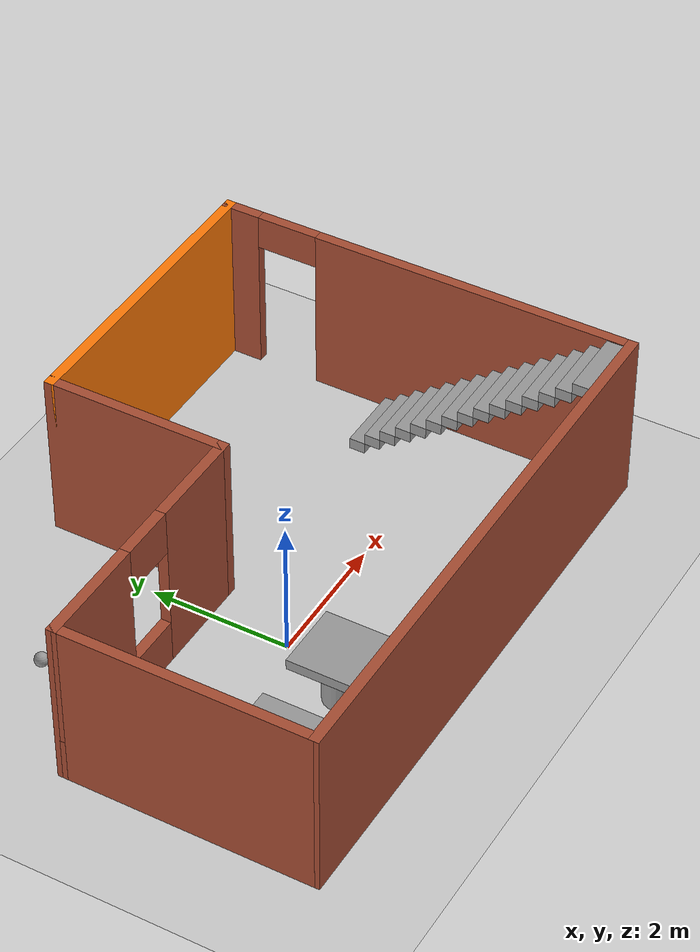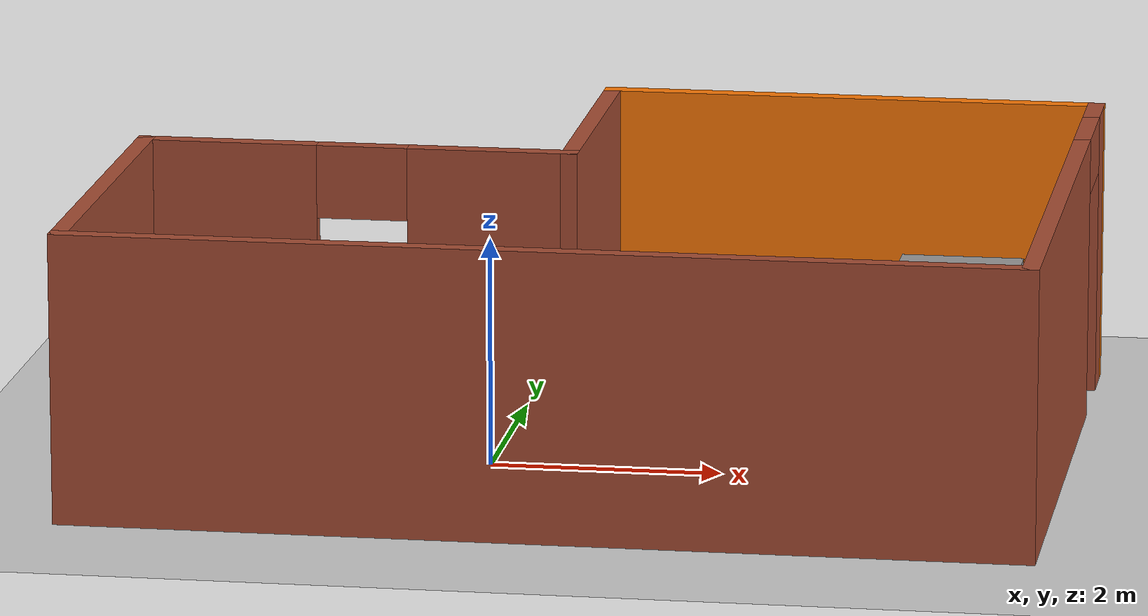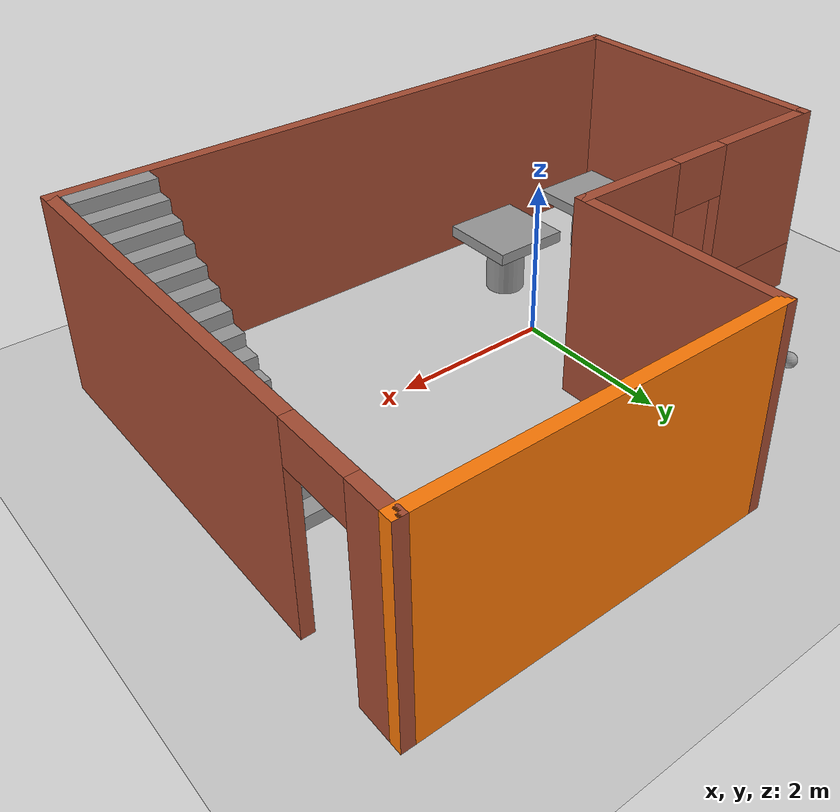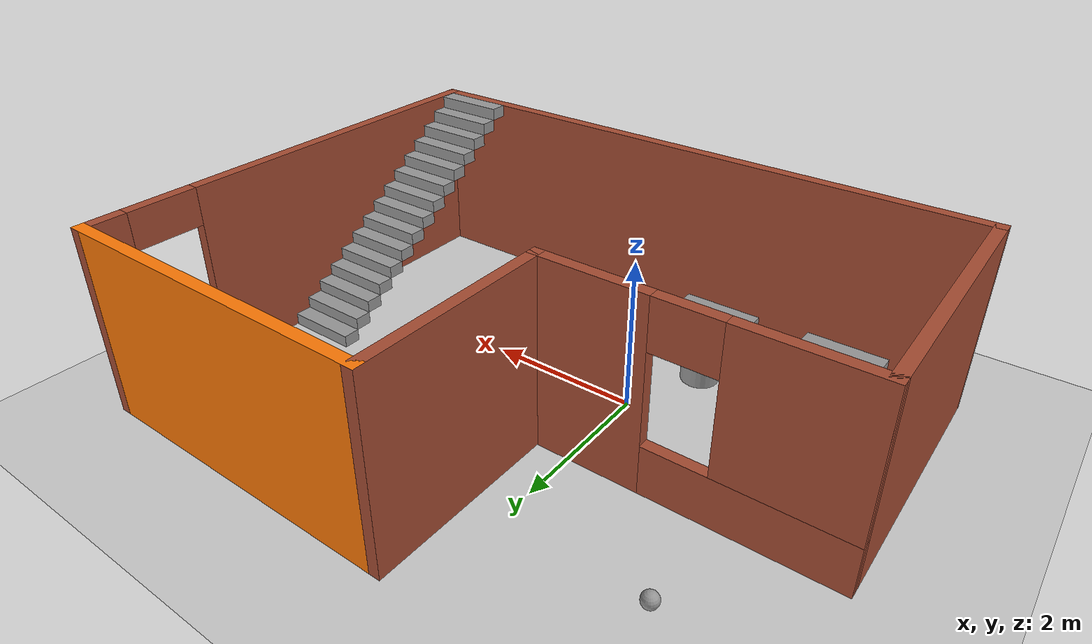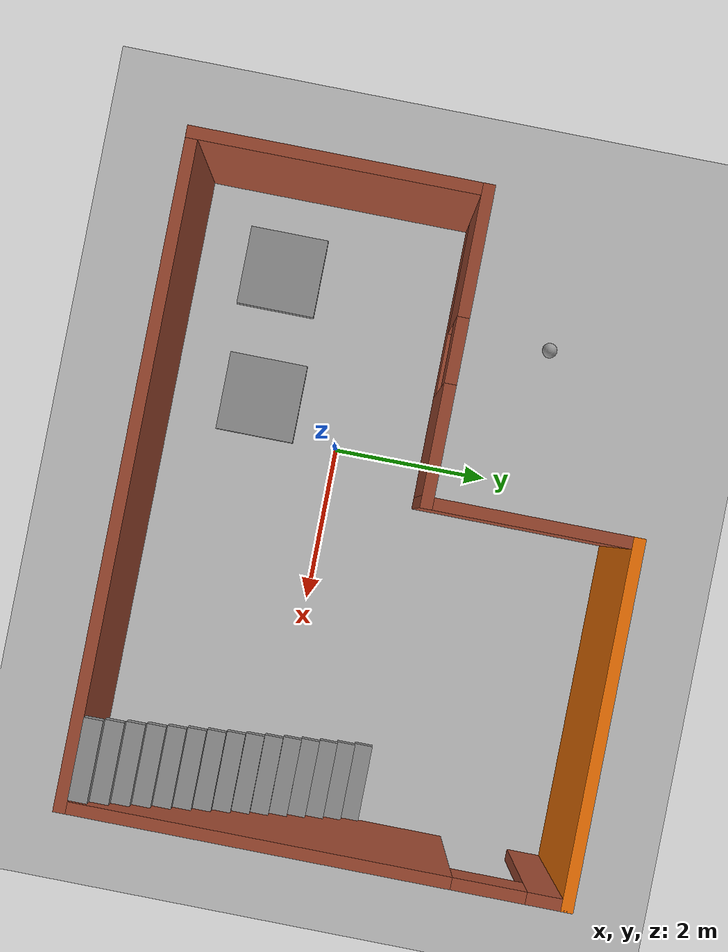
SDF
<sdf version="1.6">
 <world name="default">
  <plugin name="hello" filename="libhello.so"/>
  <light name="sun" type="directional">
   <pose>0 0 10 0 -0 0</pose>
   <diffuse>0.8 0.8 0.8 1</diffuse>
   <specular>0.2 0.2 0.2 1</specular>
   <attenuation>
    <range>1000</range>
    <constant>0.9</constant>
    <linear>0.01</linear>
    <quadratic>0.001</quadratic>
   </attenuation>
   <direction>-0.5 0.1 -0.9</direction>
  </light>
  <model name="ground_plane">
   <static>1</static>
   <link name="link">
    <collision name="collision">
     <geometry><plane><normal>0 0 1</normal><size>100 100</size></plane></geometry>
     <surface><friction><ode><mu>100</mu><mu2>50</mu2></ode></friction></surface>
    </collision>
    <visual name="visual">
     <cast_shadows>0</cast_shadows>
     <geometry><plane><normal>0 0 1</normal><size>100 100</size></plane></geometry>
     <material>
      <script><uri>file://media/materials/scripts/gazebo.material</uri><name>Gazebo/Grey</name></script>
     </material>
    </visual>
   </link>
  </model>
  <gravity>0 0 -9.8</gravity>
  <magnetic_field>6e-06 2.3e-05 -4.2e-05</magnetic_field>
  <atmosphere type="adiabatic"/>
  <physics name="default_physics" default="0" type="ode">
   <max_step_size>0.001</max_step_size>
   <real_time_factor>1</real_time_factor>
   <real_time_update_rate>1000</real_time_update_rate>
  </physics>
  <scene><ambient>0.4 0.4 0.4 1</ambient><background>0.7 0.7 0.7 1</background><shadows>1</shadows></scene>
  <spherical_coordinates>
   <surface_model>EARTH_WGS84</surface_model>
   <latitude_deg>0</latitude_deg>
   <longitude_deg>0</longitude_deg>
   <elevation>0</elevation>
   <heading_deg>0</heading_deg>
  </spherical_coordinates>
  <model name="office">
   <pose>0.801744 0.711257 0 0 -0 0</pose>
   <link name="Stairs_0">
    <visual name="Stairs_0_Visual_0">
     <pose>3.46197 0.405401 0.083333 0 -0 0</pose>
     <geometry><box><size>1 0.233333 0.166667</size></box></geometry>
     <material>
      <script><uri>file://media/materials/scripts/gazebo.material</uri><name>Gazebo/Grey</name></script>
      <ambient>1 1 1 1</ambient>
     </material>
     <meta><layer>0</layer></meta>
    </visual>
    <collision name="Stairs_0_Collision_0">
     <geometry><box><size>1 0.233333 0.166667</size></box></geometry>
     <pose>3.46197 0.405401 0.083333 0 -0 0</pose>
    </collision>
    <visual name="Stairs_0_Visual_1">
     <pose>3.46197 0.172068 0.25 0 -0 0</pose>
     <geometry><box><size>1 0.233333 0.166667</size></box></geometry>
     <material>
      <script><uri>file://media/materials/scripts/gazebo.material</uri><name>Gazebo/Grey</name></script>
      <ambient>1 1 1 1</ambient>
     </material>
     <meta><layer>0</layer></meta>
    </visual>
    <collision name="Stairs_0_Collision_1">
     <geometry><box><size>1 0.233333 0.166667</size></box></geometry>
     <pose>3.46197 0.172068 0.25 0 -0 0</pose>
    </collision>
    <visual name="Stairs_0_Visual_2">
     <pose>3.46197 -0.061265 0.416667 0 -0 0</pose>
     <geometry><box><size>1 0.233333 0.166667</size></box></geometry>
     <material>
      <script><uri>file://media/materials/scripts/gazebo.material</uri><name>Gazebo/Grey</name></script>
      <ambient>1 1 1 1</ambient>
     </material>
     <meta><layer>0</layer></meta>
    </visual>
    <collision name="Stairs_0_Collision_2">
     <geometry><box><size>1 0.233333 0.166667</size></box></geometry>
     <pose>3.46197 -0.061265 0.416667 0 -0 0</pose>
    </collision>
    <visual name="Stairs_0_Visual_3">
     <pose>3.46197 -0.294599 0.583333 0 -0 0</pose>
     <geometry><box><size>1 0.233333 0.166667</size></box></geometry>
     <material>
      <script><uri>file://media/materials/scripts/gazebo.material</uri><name>Gazebo/Grey</name></script>
      <ambient>1 1 1 1</ambient>
     </material>
     <meta><layer>0</layer></meta>
    </visual>
    <collision name="Stairs_0_Collision_3">
     <geometry><box><size>1 0.233333 0.166667</size></box></geometry>
     <pose>3.46197 -0.294599 0.583333 0 -0 0</pose>
    </collision>
    <visual name="Stairs_0_Visual_4">
     <pose>3.46197 -0.527932 0.75 0 -0 0</pose>
     <geometry><box><size>1 0.233333 0.166667</size></box></geometry>
     <material>
      <script><uri>file://media/materials/scripts/gazebo.material</uri><name>Gazebo/Grey</name></script>
      <ambient>1 1 1 1</ambient>
     </material>
     <meta><layer>0</layer></meta>
    </visual>
    <collision name="Stairs_0_Collision_4">
     <geometry><box><size>1 0.233333 0.166667</size></box></geometry>
     <pose>3.46197 -0.527932 0.75 0 -0 0</pose>
    </collision>
    <visual name="Stairs_0_Visual_5">
     <pose>3.46197 -0.761266 0.916667 0 -0 0</pose>
     <geometry><box><size>1 0.233333 0.166667</size></box></geometry>
     <material>
      <script><uri>file://media/materials/scripts/gazebo.material</uri><name>Gazebo/Grey</name></script>
      <ambient>1 1 1 1</ambient>
     </material>
     <meta><layer>0</layer></meta>
    </visual>
    <collision name="Stairs_0_Collision_5">
     <geometry><box><size>1 0.233333 0.166667</size></box></geometry>
     <pose>3.46197 -0.761266 0.916667 0 -0 0</pose>
    </collision>
    <visual name="Stairs_0_Visual_6">
     <pose>3.46197 -0.994599 1.08333 0 -0 0</pose>
     <geometry><box><size>1 0.233333 0.166667</size></box></geometry>
     <material>
      <script><uri>file://media/materials/scripts/gazebo.material</uri><name>Gazebo/Grey</name></script>
      <ambient>1 1 1 1</ambient>
     </material>
     <meta><layer>0</layer></meta>
    </visual>
    <collision name="Stairs_0_Collision_6">
     <geometry><box><size>1 0.233333 0.166667</size></box></geometry>
     <pose>3.46197 -0.994599 1.08333 0 -0 0</pose>
    </collision>
    <visual name="Stairs_0_Visual_7">
     <pose>3.46197 -1.22793 1.25 0 -0 0</pose>
     <geometry><box><size>1 0.233333 0.166667</size></box></geometry>
     <material>
      <script><uri>file://media/materials/scripts/gazebo.material</uri><name>Gazebo/Grey</name></script>
      <ambient>1 1 1 1</ambient>
     </material>
     <meta><layer>0</layer></meta>
    </visual>
    <collision name="Stairs_0_Collision_7">
     <geometry><box><size>1 0.233333 0.166667</size></box></geometry>
     <pose>3.46197 -1.22793 1.25 0 -0 0</pose>
    </collision>
    <visual name="Stairs_0_Visual_8">
     <pose>3.46197 -1.46127 1.41667 0 -0 0</pose>
     <geometry><box><size>1 0.233333 0.166667</size></box></geometry>
     <material>
      <script><uri>file://media/materials/scripts/gazebo.material</uri><name>Gazebo/Grey</name></script>
      <ambient>1 1 1 1</ambient>
     </material>
     <meta><layer>0</layer></meta>
    </visual>
    <collision name="Stairs_0_Collision_8">
     <geometry><box><size>1 0.233333 0.166667</size></box></geometry>
     <pose>3.46197 -1.46127 1.41667 0 -0 0</pose>
    </collision>
    <visual name="Stairs_0_Visual_9">
     <pose>3.46197 -1.6946 1.58333 0 -0 0</pose>
     <geometry><box><size>1 0.233333 0.166667</size></box></geometry>
     <material>
      <script><uri>file://media/materials/scripts/gazebo.material</uri><name>Gazebo/Grey</name></script>
      <ambient>1 1 1 1</ambient>
     </material>
     <meta><layer>0</layer></meta>
    </visual>
    <collision name="Stairs_0_Collision_9">
     <geometry><box><size>1 0.233333 0.166667</size></box></geometry>
     <pose>3.46197 -1.6946 1.58333 0 -0 0</pose>
    </collision>
    <visual name="Stairs_0_Visual_10">
     <pose>3.46197 -1.92793 1.75 0 -0 0</pose>
     <geometry><box><size>1 0.233333 0.166667</size></box></geometry>
     <material>
      <script><uri>file://media/materials/scripts/gazebo.material</uri><name>Gazebo/Grey</name></script>
      <ambient>1 1 1 1</ambient>
     </material>
     <meta><layer>0</layer></meta>
    </visual>
    <collision name="Stairs_0_Collision_10">
     <geometry><box><size>1 0.233333 0.166667</size></box></geometry>
     <pose>3.46197 -1.92793 1.75 0 -0 0</pose>
    </collision>
    <visual name="Stairs_0_Visual_11">
     <pose>3.46197 -2.16127 1.91667 0 -0 0</pose>
     <geometry><box><size>1 0.233333 0.166667</size></box></geometry>
     <material>
      <script><uri>file://media/materials/scripts/gazebo.material</uri><name>Gazebo/Grey</name></script>
      <ambient>1 1 1 1</ambient>
     </material>
     <meta><layer>0</layer></meta>
    </visual>
    <collision name="Stairs_0_Collision_11">
     <geometry><box><size>1 0.233333 0.166667</size></box></geometry>
     <pose>3.46197 -2.16127 1.91667 0 -0 0</pose>
    </collision>
    <visual name="Stairs_0_Visual_12">
     <pose>3.46197 -2.3946 2.08333 0 -0 0</pose>
     <geometry><box><size>1 0.233333 0.166667</size></box></geometry>
     <material>
      <script><uri>file://media/materials/scripts/gazebo.material</uri><name>Gazebo/Grey</name></script>
      <ambient>1 1 1 1</ambient>
     </material>
     <meta><layer>0</layer></meta>
    </visual>
    <collision name="Stairs_0_Collision_12">
     <geometry><box><size>1 0.233333 0.166667</size></box></geometry>
     <pose>3.46197 -2.3946 2.08333 0 -0 0</pose>
    </collision>
    <visual name="Stairs_0_Visual_13">
     <pose>3.46197 -2.62793 2.25 0 -0 0</pose>
     <geometry><box><size>1 0.233333 0.166667</size></box></geometry>
     <material>
      <script><uri>file://media/materials/scripts/gazebo.material</uri><name>Gazebo/Grey</name></script>
      <ambient>1 1 1 1</ambient>
     </material>
     <meta><layer>0</layer></meta>
    </visual>
    <collision name="Stairs_0_Collision_13">
     <geometry><box><size>1 0.233333 0.166667</size></box></geometry>
     <pose>3.46197 -2.62793 2.25 0 -0 0</pose>
    </collision>
    <visual name="Stairs_0_Visual_14">
     <pose>3.46197 -2.86126 2.41667 0 -0 0</pose>
     <geometry><box><size>1 0.233333 0.166667</size></box></geometry>
     <material>
      <script><uri>file://media/materials/scripts/gazebo.material</uri><name>Gazebo/Grey</name></script>
      <ambient>1 1 1 1</ambient>
     </material>
     <meta><layer>0</layer></meta>
    </visual>
    <collision name="Stairs_0_Collision_14">
     <geometry><box><size>1 0.233333 0.166667</size></box></geometry>
     <pose>3.46197 -2.86126 2.41667 0 -0 0</pose>
    </collision>
   </link>
   <link name="Wall_10">
    <pose>-2.17494 0.503453 0 0 -0 3.14159</pose>
    <visual name="Wall_10_Visual_0">
     <pose>-1.20118 0 1.25 0 -0 0</pose>
     <geometry><box><size>1.50063 0.15 2.5</size></box></geometry>
     <material>
      <script><uri>file://media/materials/scripts/gazebo.material</uri><name>Gazebo/Bricks</name></script>
      <ambient>0.996078 0.47451 0.0196078 1</ambient>
     </material>
     <meta><layer>0</layer></meta>
    </visual>
    <collision name="Wall_10_Collision_0">
     <geometry><box><size>1.50063 0.15 2.5</size></box></geometry>
     <pose>-1.20118 0 1.25 0 -0 0</pose>
    </collision>
    <visual name="Wall_10_Visual_1">
     <pose>0.750315 0 0.325 0 -0 0</pose>
     <geometry><box><size>2.40237 0.15 0.65</size></box></geometry>
     <material>
      <script><uri>file://media/materials/scripts/gazebo.material</uri><name>Gazebo/Bricks</name></script>
      <ambient>0.996078 0.47451 0.0196078 1</ambient>
     </material>
     <meta><layer>0</layer></meta>
    </visual>
    <collision name="Wall_10_Collision_1">
     <geometry><box><size>2.40237 0.15 0.65</size></box></geometry>
     <pose>0.750315 0 0.325 0 -0 0</pose>
    </collision>
    <visual name="Wall_10_Visual_2">
     <pose>1.15031 0 1.575 0 -0 0</pose>
     <geometry><box><size>1.60237 0.15 1.85</size></box></geometry>
     <material>
      <script><uri>file://media/materials/scripts/gazebo.material</uri><name>Gazebo/Bricks</name></script>
      <ambient>0.996078 0.47451 0.0196078 1</ambient>
     </material>
     <meta><layer>0</layer></meta>
    </visual>
    <collision name="Wall_10_Collision_2">
     <geometry><box><size>1.60237 0.15 1.85</size></box></geometry>
     <pose>1.15031 0 1.575 0 -0 0</pose>
    </collision>
    <visual name="Wall_10_Visual_3">
     <pose>-0.050871 0 2.175 0 -0 0</pose>
     <geometry><box><size>0.8 0.15 0.65</size></box></geometry>
     <material>
      <script><uri>file://media/materials/scripts/gazebo.material</uri><name>Gazebo/Bricks</name></script>
      <ambient>0.996078 0.47451 0.0196078 1</ambient>
     </material>
     <meta><layer>0</layer></meta>
    </visual>
    <collision name="Wall_10_Collision_3">
     <geometry><box><size>0.8 0.15 0.65</size></box></geometry>
     <pose>-0.050871 0 2.175 0 -0 0</pose>
    </collision>
   </link>
   <link name="Wall_5">
    <collision name="Wall_5_Collision">
     <geometry><box><size>3.7032 0.15 2.5</size></box></geometry>
     <pose>0 0 1.25 0 -0 0</pose>
    </collision>
    <visual name="Wall_5_Visual">
     <pose>0 0 1.25 0 -0 0</pose>
     <geometry><box><size>3.7032 0.15 2.5</size></box></geometry>
     <material>
      <script><uri>file://media/materials/scripts/gazebo.material</uri><name>Gazebo/Bricks</name></script>
      <ambient>0.996078 0.47451 0.0196078 1</ambient>
     </material>
     <meta><layer>0</layer></meta>
    </visual>
    <pose>-4.04997 -1.27332 0 0 0 -1.56997</pose>
   </link>
   <link name="Wall_6">
    <collision name="Wall_6_Collision">
     <geometry><box><size>8.25 0.15 2.5</size></box></geometry>
     <pose>0 0 1.25 0 -0 0</pose>
    </collision>
    <visual name="Wall_6_Visual">
     <pose>0 0 1.25 0 -0 0</pose>
     <geometry><box><size>8.25 0.15 2.5</size></box></geometry>
     <material>
      <script><uri>file://media/materials/scripts/gazebo.material</uri><name>Gazebo/Bricks</name></script>
      <ambient>0.996078 0.47451 0.0196078 1</ambient>
     </material>
     <meta><layer>0</layer></meta>
    </visual>
    <pose>0.001502 -3.05009 0 0 -0 0</pose>
   </link>
   <link name="Wall_7">
    <pose>4.0515 -8.5e-05 0 0 -0 1.5708</pose>
    <visual name="Wall_7_Visual_0">
     <pose>-0.738911 0 1.25 0 -0 0</pose>
     <geometry><box><size>4.77218 0.15 2.5</size></box></geometry>
     <material>
      <script><uri>file://media/materials/scripts/gazebo.material</uri><name>Gazebo/Bricks</name></script>
      <ambient>0.996078 0.47451 0.0196078 1</ambient>
     </material>
     <meta><layer>0</layer></meta>
    </visual>
    <collision name="Wall_7_Collision_0">
     <geometry><box><size>4.77218 0.15 2.5</size></box></geometry>
     <pose>-0.738911 0 1.25 0 -0 0</pose>
    </collision>
    <visual name="Wall_7_Visual_1">
     <pose>2.83609 0 1.25 0 -0 0</pose>
     <geometry><box><size>0.577822 0.15 2.5</size></box></geometry>
     <material>
      <script><uri>file://media/materials/scripts/gazebo.material</uri><name>Gazebo/Bricks</name></script>
      <ambient>0.996078 0.47451 0.0196078 1</ambient>
     </material>
     <meta><layer>0</layer></meta>
    </visual>
    <collision name="Wall_7_Collision_1">
     <geometry><box><size>0.577822 0.15 2.5</size></box></geometry>
     <pose>2.83609 0 1.25 0 -0 0</pose>
    </collision>
    <visual name="Wall_7_Visual_2">
     <pose>2.09718 0 2.25 0 -0 0</pose>
     <geometry><box><size>0.9 0.15 0.5</size></box></geometry>
     <material>
      <script><uri>file://media/materials/scripts/gazebo.material</uri><name>Gazebo/Bricks</name></script>
      <ambient>0.996078 0.47451 0.0196078 1</ambient>
     </material>
     <meta><layer>0</layer></meta>
    </visual>
    <collision name="Wall_7_Collision_2">
     <geometry><box><size>0.9 0.15 0.5</size></box></geometry>
     <pose>2.09718 0 2.25 0 -0 0</pose>
    </collision>
   </link>
   <link name="Wall_8">
    <collision name="Wall_8_Collision">
     <geometry><box><size>4.5 0.15 2.5</size></box></geometry>
     <pose>0 0 1.25 0 -0 0</pose>
    </collision>
    <visual name="Wall_8_Visual">
     <pose>0 0 1.25 0 -0 0</pose>
     <geometry><box><size>4.5 0.15 2.5</size></box></geometry>
     <material>
      <script><uri>file://media/materials/scripts/gazebo.material</uri><name>Gazebo/Grey</name></script>
      <ambient>0.996078 0.47451 0.0196078 1</ambient>
     </material>
     <meta><layer>0</layer></meta>
    </visual>
    <pose>1.8765 3.04991 0 0 -0 3.14159</pose>
   </link>
   <link name="Wall_9">
    <collision name="Wall_9_Collision">
     <geometry><box><size>2.6968 0.15 2.5</size></box></geometry>
     <pose>0 0 1.25 0 -0 0</pose>
    </collision>
    <visual name="Wall_9_Visual">
     <pose>0 0 1.25 0 -0 0</pose>
     <geometry><box><size>2.6968 0.15 2.5</size></box></geometry>
     <material>
      <script><uri>file://media/materials/scripts/gazebo.material</uri><name>Gazebo/Bricks</name></script>
      <ambient>0.996078 0.47451 0.0196078 1</ambient>
     </material>
     <meta><layer>0</layer></meta>
    </visual>
    <pose>-0.298469 1.77668 0 0 0 -1.57077</pose>
   </link>
   <static>1</static>
  </model>
  <model name="table">
   <link name="link_0">
    <pose>-0 0 0.212306 0 -0 0</pose>
    <inertial>
     <mass>0.149222</mass>
     <inertia>
      <ixx>0.0127121</ixx>
      <ixy>0</ixy>
      <ixz>0</ixz>
      <iyy>0.0127121</iyy>
      <iyz>0</iyz>
      <izz>0.0248704</izz>
     </inertia>
    </inertial>
    <visual name="visual">
     <geometry><box><size>1 1 0.149223</size></box></geometry>
     <material>
      <lighting>1</lighting>
      <script><uri>file://media/materials/scripts/gazebo.material</uri><name>Gazebo/Grey</name></script>
      <shader type="pixel"><normal_map>__default__</normal_map></shader>
      <ambient>0.3 0.3 0.3 1</ambient>
      <diffuse>0.7 0.7 0.7 1</diffuse>
      <specular>0.01 0.01 0.01 1</specular>
      <emissive>0 0 0 1</emissive>
     </material>
    </visual>
    <collision name="collision">
     <geometry><box><size>1 1 0.149223</size></box></geometry>
     <surface>
      <friction>
       <ode><mu>1</mu><mu2>1</mu2><fdir1>0 0 0</fdir1><slip1>0</slip1><slip2>0</slip2></ode>
       <torsional>
        <coefficient>1</coefficient>
        <patch_radius>0</patch_radius>
        <surface_radius>0</surface_radius>
        <use_patch_radius>1</use_patch_radius>
        <ode><slip>0</slip></ode>
       </torsional>
      </friction>
      <bounce><restitution_coefficient>0</restitution_coefficient><threshold>1e+06</threshold></bounce>
      <contact>
       <collide_without_contact>0</collide_without_contact>
       <collide_without_contact_bitmask>1</collide_without_contact_bitmask>
       <collide_bitmask>1</collide_bitmask>
       <ode>
        <soft_cfm>0</soft_cfm>
        <soft_erp>0.2</soft_erp>
        <kp>1e+13</kp>
        <kd>1</kd>
        <max_vel>0.01</max_vel>
        <min_depth>0</min_depth>
       </ode>
       <bullet>
        <split_impulse>1</split_impulse>
        <split_impulse_penetration_threshold>-0.01</split_impulse_penetration_threshold>
        <soft_cfm>0</soft_cfm>
        <soft_erp>0.2</soft_erp>
        <kp>1e+13</kp>
        <kd>1</kd>
       </bullet>
      </contact>
     </surface>
    </collision>
   </link>
   <link name="link_1">
    <pose>-0 0 -0.212306 0 -0 0</pose>
    <inertial>
     <mass>0.6939</mass>
     <inertia>
      <ixx>0.0712112</ixx>
      <ixy>0</ixy>
      <ixz>0</ixz>
      <iyy>0.0712112</iyy>
      <iyz>0</iyz>
      <izz>0.0867374</izz>
     </inertia>
    </inertial>
    <visual name="visual">
     <geometry><cylinder><radius>0.25</radius><length>0.7</length></cylinder></geometry>
     <material>
      <lighting>1</lighting>
      <script><uri>file://media/materials/scripts/gazebo.material</uri><name>Gazebo/Grey</name></script>
      <shader type="pixel"><normal_map>__default__</normal_map></shader>
      <ambient>0.3 0.3 0.3 1</ambient>
      <diffuse>0.7 0.7 0.7 1</diffuse>
      <specular>0.01 0.01 0.01 1</specular>
      <emissive>0 0 0 1</emissive>
     </material>
    </visual>
    <collision name="collision">
     <geometry><cylinder><radius>0.25</radius><length>0.7</length></cylinder></geometry>
     <surface>
      <friction>
       <ode><mu>1</mu><mu2>1</mu2><fdir1>0 0 0</fdir1><slip1>0</slip1><slip2>0</slip2></ode>
       <torsional>
        <coefficient>1</coefficient>
        <patch_radius>0</patch_radius>
        <surface_radius>0</surface_radius>
        <use_patch_radius>1</use_patch_radius>
        <ode><slip>0</slip></ode>
       </torsional>
      </friction>
      <bounce><restitution_coefficient>0</restitution_coefficient><threshold>1e+06</threshold></bounce>
      <contact>
       <collide_without_contact>0</collide_without_contact>
       <collide_without_contact_bitmask>1</collide_without_contact_bitmask>
       <collide_bitmask>1</collide_bitmask>
       <ode>
        <soft_cfm>0</soft_cfm>
        <soft_erp>0.2</soft_erp>
        <kp>1e+13</kp>
        <kd>1</kd>
        <max_vel>0.01</max_vel>
        <min_depth>0</min_depth>
       </ode>
       <bullet>
        <split_impulse>1</split_impulse>
        <split_impulse_penetration_threshold>-0.01</split_impulse_penetration_threshold>
        <soft_cfm>0</soft_cfm>
        <soft_erp>0.2</soft_erp>
        <kp>1e+13</kp>
        <kd>1</kd>
       </bullet>
      </contact>
     </surface>
    </collision>
   </link>
   <joint name="link_0_JOINT_0" type="fixed">
    <parent>link_0</parent>
    <child>link_1</child>
    <physics>
     <ode><limit><cfm>0</cfm><erp>0.2</erp></limit><suspension><cfm>0</cfm><erp>0.2</erp></suspension></ode>
    </physics>
   </joint>
   <static>0</static>
   <pose>-0.443215 -1.04974 0.562306 0 -0 0.000238</pose>
  </model>
  <model name="table_clone">
   <link name="link_0">
    <pose>-0 0 0.212306 0 -0 0</pose>
    <inertial>
     <mass>0.149222</mass>
     <inertia>
      <ixx>0.0127121</ixx>
      <ixy>0</ixy>
      <ixz>0</ixz>
      <iyy>0.0127121</iyy>
      <iyz>0</iyz>
      <izz>0.0248704</izz>
     </inertia>
    </inertial>
    <visual name="visual">
     <geometry><box><size>1 1 0.149223</size></box></geometry>
     <material>
      <lighting>1</lighting>
      <script><uri>file://media/materials/scripts/gazebo.material</uri><name>Gazebo/Grey</name></script>
      <shader type="pixel"><normal_map>__default__</normal_map></shader>
      <ambient>0.3 0.3 0.3 1</ambient>
      <diffuse>0.7 0.7 0.7 1</diffuse>
      <specular>0.01 0.01 0.01 1</specular>
      <emissive>0 0 0 1</emissive>
     </material>
    </visual>
    <collision name="collision">
     <geometry><box><size>1 1 0.149223</size></box></geometry>
     <surface>
      <friction>
       <ode><mu>1</mu><mu2>1</mu2><fdir1>0 0 0</fdir1><slip1>0</slip1><slip2>0</slip2></ode>
       <torsional>
        <coefficient>1</coefficient>
        <patch_radius>0</patch_radius>
        <surface_radius>0</surface_radius>
        <use_patch_radius>1</use_patch_radius>
        <ode><slip>0</slip></ode>
       </torsional>
      </friction>
      <bounce><restitution_coefficient>0</restitution_coefficient><threshold>1e+06</threshold></bounce>
      <contact>
       <collide_without_contact>0</collide_without_contact>
       <collide_without_contact_bitmask>1</collide_without_contact_bitmask>
       <collide_bitmask>1</collide_bitmask>
       <ode>
        <soft_cfm>0</soft_cfm>
        <soft_erp>0.2</soft_erp>
        <kp>1e+13</kp>
        <kd>1</kd>
        <max_vel>0.01</max_vel>
        <min_depth>0</min_depth>
       </ode>
       <bullet>
        <split_impulse>1</split_impulse>
        <split_impulse_penetration_threshold>-0.01</split_impulse_penetration_threshold>
        <soft_cfm>0</soft_cfm>
        <soft_erp>0.2</soft_erp>
        <kp>1e+13</kp>
        <kd>1</kd>
       </bullet>
      </contact>
     </surface>
    </collision>
   </link>
   <link name="link_1">
    <pose>-0 0 -0.212306 0 -0 0</pose>
    <inertial>
     <mass>0.6939</mass>
     <inertia>
      <ixx>0.0712112</ixx>
      <ixy>0</ixy>
      <ixz>0</ixz>
      <iyy>0.0712112</iyy>
      <iyz>0</iyz>
      <izz>0.0867374</izz>
     </inertia>
    </inertial>
    <visual name="visual">
     <geometry><cylinder><radius>0.25</radius><length>0.7</length></cylinder></geometry>
     <material>
      <lighting>1</lighting>
      <script><uri>file://media/materials/scripts/gazebo.material</uri><name>Gazebo/Grey</name></script>
      <shader type="pixel"><normal_map>__default__</normal_map></shader>
      <ambient>0.3 0.3 0.3 1</ambient>
      <diffuse>0.7 0.7 0.7 1</diffuse>
      <specular>0.01 0.01 0.01 1</specular>
      <emissive>0 0 0 1</emissive>
     </material>
    </visual>
    <collision name="collision">
     <geometry><cylinder><radius>0.25</radius><length>0.7</length></cylinder></geometry>
     <surface>
      <friction>
       <ode><mu>1</mu><mu2>1</mu2><fdir1>0 0 0</fdir1><slip1>0</slip1><slip2>0</slip2></ode>
       <torsional>
        <coefficient>1</coefficient>
        <patch_radius>0</patch_radius>
        <surface_radius>0</surface_radius>
        <use_patch_radius>1</use_patch_radius>
        <ode><slip>0</slip></ode>
       </torsional>
      </friction>
      <bounce><restitution_coefficient>0</restitution_coefficient><threshold>1e+06</threshold></bounce>
      <contact>
       <collide_without_contact>0</collide_without_contact>
       <collide_without_contact_bitmask>1</collide_without_contact_bitmask>
       <collide_bitmask>1</collide_bitmask>
       <ode>
        <soft_cfm>0</soft_cfm>
        <soft_erp>0.2</soft_erp>
        <kp>1e+13</kp>
        <kd>1</kd>
        <max_vel>0.01</max_vel>
        <min_depth>0</min_depth>
       </ode>
       <bullet>
        <split_impulse>1</split_impulse>
        <split_impulse_penetration_threshold>-0.01</split_impulse_penetration_threshold>
        <soft_cfm>0</soft_cfm>
        <soft_erp>0.2</soft_erp>
        <kp>1e+13</kp>
        <kd>1</kd>
       </bullet>
      </contact>
     </surface>
    </collision>
   </link>
   <joint name="link_0_JOINT_0" type="fixed">
    <parent>link_0</parent>
    <child>link_1</child>
    <physics>
     <ode><limit><cfm>0</cfm><erp>0.2</erp></limit><suspension><cfm>0</cfm><erp>0.2</erp></suspension></ode>
    </physics>
   </joint>
   <static>0</static>
   <pose>-2.07022 -1.09715 0.562306 0 -0 0</pose>
  </model>
  <model name="my_ball">
   <link name="link_0">
    <pose>1.29054 -1.29051 0.5 0 -0 0</pose>
    <inertial>
     <mass>1</mass>
     <inertia><ixx>0.1</ixx><ixy>0</ixy><ixz>0</ixz><iyy>0.1</iyy><iyz>0</iyz><izz>0.1</izz></inertia>
    </inertial>
    <visual name="visual">
     <geometry><sphere><radius>0.1</radius></sphere></geometry>
     <material>
      <lighting>1</lighting>
      <script><uri>file://media/materials/scripts/gazebo.material</uri><name>Gazebo/Grey</name></script>
      <ambient>0.3 0.3 0.3 1</ambient>
      <diffuse>1 1 1 1</diffuse>
      <specular>1 1 1 1</specular>
      <emissive>1 1 1 1</emissive>
      <shader type="vertex"><normal_map>__default__</normal_map></shader>
     </material>
    </visual>
    <collision name="collision">
     <geometry><sphere><radius>0.1</radius></sphere></geometry>
     <surface>
      <friction>
       <ode><mu>1</mu><mu2>1</mu2><fdir1>0 0 0</fdir1><slip1>0</slip1><slip2>0</slip2></ode>
       <torsional>
        <coefficient>1</coefficient>
        <patch_radius>0</patch_radius>
        <surface_radius>0</surface_radius>
        <use_patch_radius>1</use_patch_radius>
        <ode><slip>0</slip></ode>
       </torsional>
      </friction>
      <bounce><restitution_coefficient>0</restitution_coefficient><threshold>1e+06</threshold></bounce>
      <contact>
       <collide_without_contact>0</collide_without_contact>
       <collide_without_contact_bitmask>1</collide_without_contact_bitmask>
       <collide_bitmask>1</collide_bitmask>
       <ode>
        <soft_cfm>0</soft_cfm>
        <soft_erp>0.2</soft_erp>
        <kp>1e+13</kp>
        <kd>1</kd>
        <max_vel>0.01</max_vel>
        <min_depth>0</min_depth>
       </ode>
       <bullet>
        <split_impulse>1</split_impulse>
        <split_impulse_penetration_threshold>-0.01</split_impulse_penetration_threshold>
        <soft_cfm>0</soft_cfm>
        <soft_erp>0.2</soft_erp>
        <kp>1e+13</kp>
        <kd>1</kd>
       </bullet>
      </contact>
     </surface>
    </collision>
   </link>
   <static>0</static>
   <pose>-3.1239 3.81807 -0.4 0 -0 0</pose>
  </model>
 </world>
</sdf>
